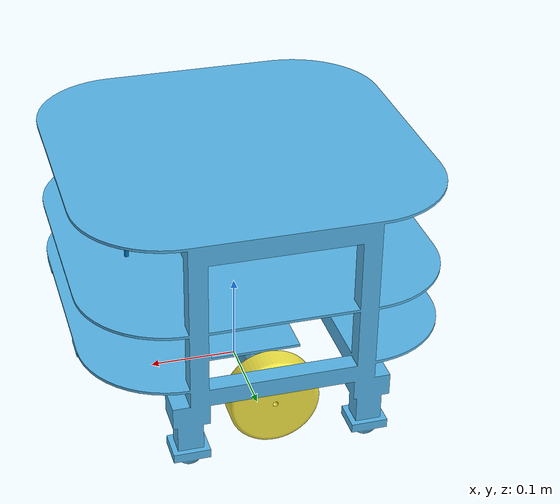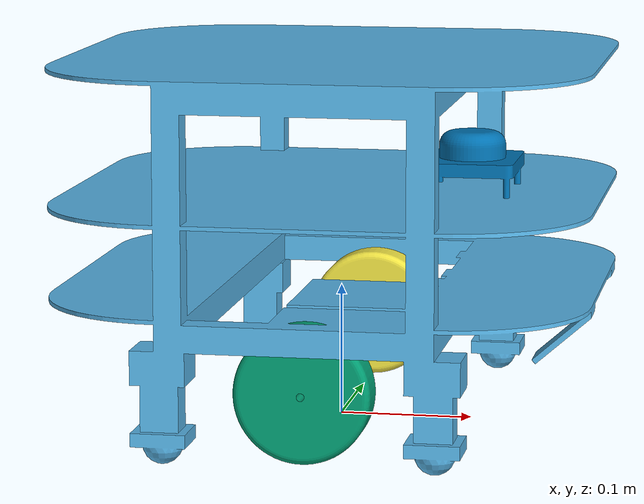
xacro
<?xml version="1.0" ?>
<robot name="toto2"
  xmlns:xacro="http://www.ros.org/wiki/xacro">

  <!-- BASE LINKS AND JOINTS OF ROBOT ARE IN THIS THESE ALLOW THE ROBOT TO NAVIGATE-->

  <link name="base_footprint"/>

  <link name="base_link">
    <inertial>
      <origin xyz="-6.090306880278278e-16 0.002513049838439521 0.1635865428520959" rpy="0 0 0"/>
      <mass value="7.0"/>
      <inertia ixx="0.380455" iyy="0.569614" izz="0.629258" ixy="0.0" iyz="0.004146" ixz="-0.0"/>
    </inertial>
    <visual>
      <origin xyz="0 0 0" rpy="0 0 -1.57079633"/>
      <geometry>
        <mesh filename="package://toto2_description/meshes/base_link.stl" scale="0.001 0.001 0.001"/>
      </geometry>
    </visual>
    <collision>
      <origin xyz="0 0 0" rpy="0 0 -1.57079633"/>
      <geometry>
        <mesh filename="package://toto2_description/meshes/base_link.stl" scale="0.001 0.001 0.001"/>
      </geometry>
    </collision>
  </link>

  <link name="right_wheel_1">
    <inertial>
      <origin xyz="0.03541204935975309 -2.4243289958354717e-14 -9.020562075079397e-17" rpy="0 0 0"/>
      <mass value="0.3"/>
      <inertia ixx="0.002407" iyy="0.001396" izz="0.001396" ixy="-0.0" iyz="0.0" ixz="0.0"/>
    </inertial>
    <visual>
      <origin xyz="-0.1195 0.0 -0.05" rpy="0 0 0"/>
      <geometry>
        <mesh filename="package://toto2_description/meshes/right_wheel_1.stl" scale="0.001 0.001 0.001"/>
      </geometry>
    </visual>
    <collision>
      <origin xyz="-0.1195 0.0 -0.05" rpy="0 0 0"/>
      <geometry>
        <mesh filename="package://toto2_description/meshes/right_wheel_1.stl" scale="0.001 0.001 0.001"/>
      </geometry>
    </collision>
  </link>

  <link name="left_wheel_1">
    <inertial>
      <origin xyz="-0.03541204935975312 4.3327407697699233e-14 -6.245004513516506e-17" rpy="0 0 0"/>
      <mass value="0.3"/>
      <inertia ixx="0.002407" iyy="0.001396" izz="0.001396" ixy="0.0" iyz="0.0" ixz="0.0"/>
    </inertial>
    <visual>
      <origin xyz="0.1195 0.0 -0.05" rpy="0 0 0"/>
      <geometry>
        <mesh filename="package://toto2_description/meshes/left_wheel_1.stl" scale="0.001 0.001 0.001"/>
      </geometry>
    </visual>
    <collision>
      <origin xyz="0.1195 0.0 -0.05" rpy="0 0 0"/>
      <geometry>
        <mesh filename="package://toto2_description/meshes/left_wheel_1.stl" scale="0.001 0.001 0.001"/>
      </geometry>
    </collision>
  </link>

  <!-- THE FOLLOWING ARE SENSOR DESCRIPTORS-->
  <!-- LIDAR -->
  <link name="lidar_1">
    <inertial>
      <origin xyz="2.2068762530809514e-10 0.08500000036781817 -0.07958250099962488" rpy="0 0 0"/>
      <mass value="0.2"/>
      <inertia ixx="0.000336" iyy="0.000279" izz="0.000513" ixy="0.0" iyz="-0.0" ixz="-0.0"/>
    </inertial>
    <visual>
      <origin xyz="0.0 -0.085 -0.17" rpy="0 0 0"/>
      <geometry>
        <mesh filename="package://toto2_description/meshes/lidar_1.stl" scale="0.001 0.001 0.001"/>
      </geometry>
    </visual>
    <collision>
      <origin xyz="0.0 -0.085 -0.17" rpy="0 0 0"/>
      <geometry>
        <mesh filename="package://toto2_description/meshes/lidar_1.stl" scale="0.001 0.001 0.001"/>
      </geometry>
    </collision>
  </link>

  <!-- CAMERA -->
  <link name="camera_link1">
  </link>

  <link name="camera_link2">
  </link>

  <link name="camera_1">
  </link>

  <!-- IMU -->

  <!-- SHARP SENSOR -->
  <link name="left_sharp">
  </link>

  <link name="right_sharp">
  </link>

  <!-- Joints -->
  <joint name="lidar_joint" type="fixed">
    <parent link="base_link"/>
    <child link="lidar_1"/>
    <origin xyz="0.1 0.0 0.17" rpy="0 0 3.14"/>
  </joint>

  <joint name="left_sharp_joint" type="fixed">
    <parent link="base_link"/>
    <child link="left_sharp"/>
    <origin xyz="0.187 0.14 0.08" rpy="0 0.7853981 0"/>
  </joint>

  <joint name="right_sharp_joint" type="fixed">
    <parent link="base_link"/>
    <child link="right_sharp"/>
    <origin xyz="0.187 -0.14 0.08" rpy="0 0.7853981 0"/>
  </joint>

  <joint name="base" type="fixed">
    <parent link="base_footprint"/>
    <child link="base_link"/>
    <origin xyz="0.0 0.0 0.0" rpy="0 0 0" />
    <axis xyz="0.0 0.0 1.0" />
  </joint>

  <joint name="camera_joint_1" type="continuous">
    <parent link="base_link"/>
    <child link="camera_link1"/>
    <origin xyz="0.16 0.0 0.2795" rpy="0 0 0" />
    <axis xyz="0.0 0.0 -1.0" />
  </joint>

  <joint name="camera_joint_2" type="continuous">
    <parent link="camera_link1"/>
    <child link="camera_link2"/>
    <origin xyz="0.03 0.0 0.042" rpy="0 0 0" />
    <axis xyz="0.0 1.0 0.0" />
  </joint>

  <joint name="camera_joint" type="fixed">
    <parent link="camera_link2"/>
    <child link="camera_1"/>
    <origin xyz="0.020 0.01 0.015" rpy="-1.57079632679 0 -1.57079632679" />
  </joint>

  <joint name="left_wheel_joint" type="fixed">
    <origin xyz=" 0.0 0.1195 0.0499" rpy="0 0 -1.57079633"/>
    <parent link="base_link"/>
    <child link="left_wheel_1"/>
  </joint>

  <joint name="right_wheel_joint" type="fixed">
    <origin xyz="0.0 -0.1195 0.0499" rpy="0 0 -1.57079633"/>
    <parent link="base_link"/>
    <child link="right_wheel_1"/>
  </joint>

</robot>
